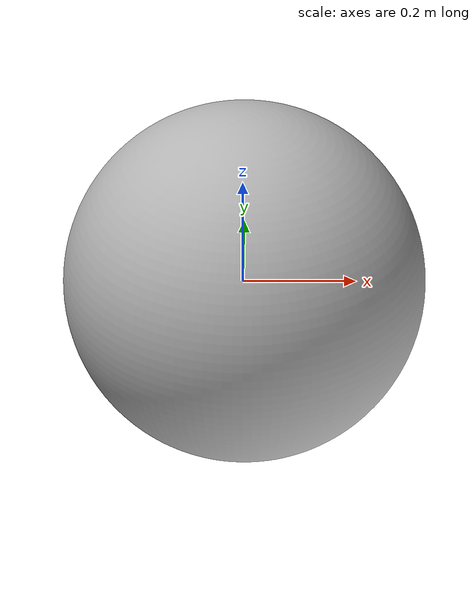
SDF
<?xml version="1.0" ?>
<sdf version="1.5">
  <world name="default">
    <scene>
      <ambient>0.8 0.8 0.8 1</ambient>
      <background>0.8 0.8 0.8 1</background>
      <shadows>1</shadows>
      <sky>
        <clouds>
          <speed>5</speed>
        </clouds>
      </sky>
    </scene>

    <!-- A global light source -->
    <include>
      <uri>model://sun</uri>
    </include>

    <!-- The world -->
    <include>
      <uri>model://earth</uri>
      <pose>0 0 0 0 0 0</pose>
    </include>
  </world>
</sdf>

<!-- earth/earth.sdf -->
<sdf version="1.5">
<model name="earth">
  <static>true</static>
  <link name="earth_link">

  <visual name="earth">
    <pose>0 0 0 0 0 0</pose>
    <geometry>
      <mesh><uri>model://earth/meshes/earth.dae</uri><scale>1 1 1</scale></mesh>
    </geometry>
  </visual>

  <collision name="earth">
    <pose>0 0 0 0 0 0</pose>
    <geometry>
      <mesh><uri>model://earth/meshes/earth.stl</uri><scale>1 1 1</scale></mesh>
    </geometry>
  </collision>

  </link>
</model>
</sdf>
